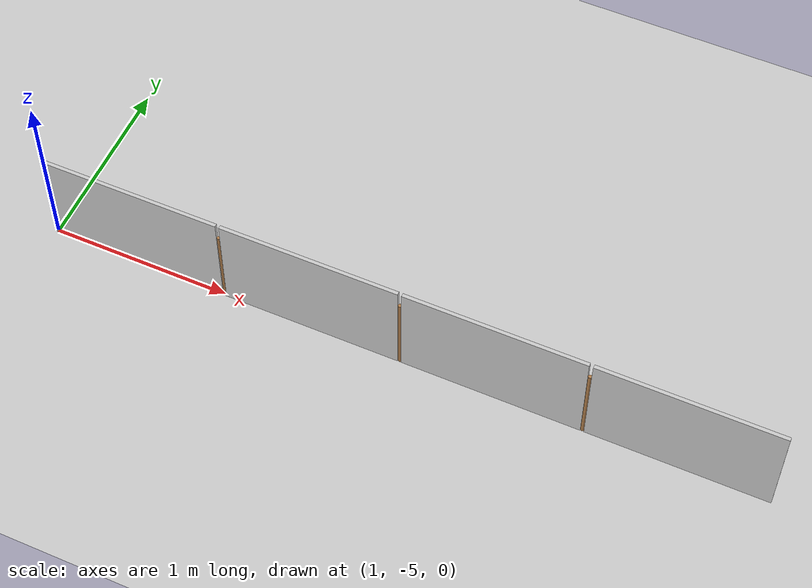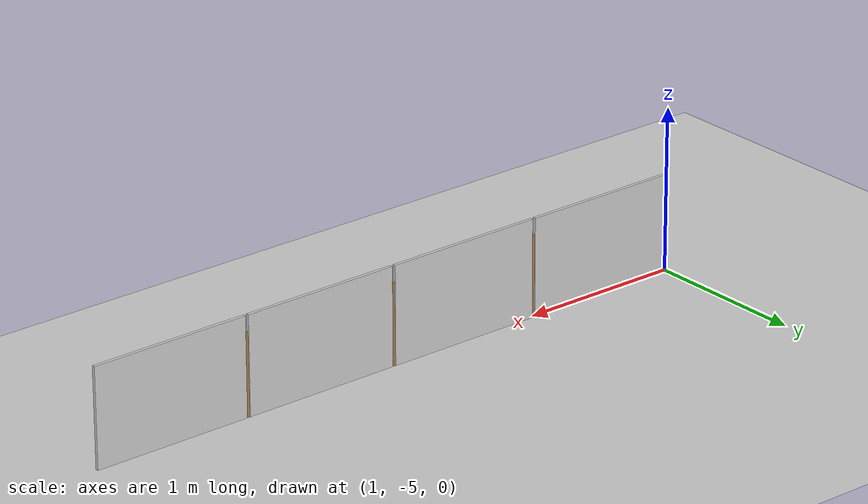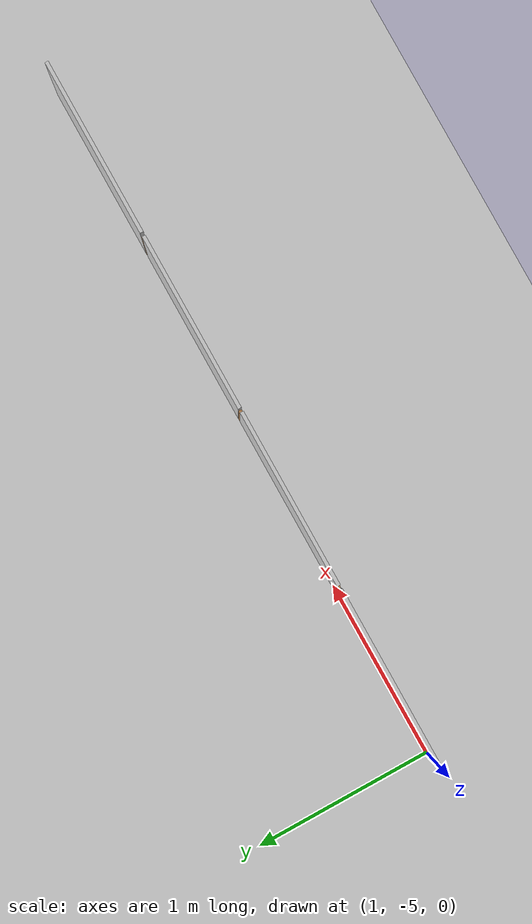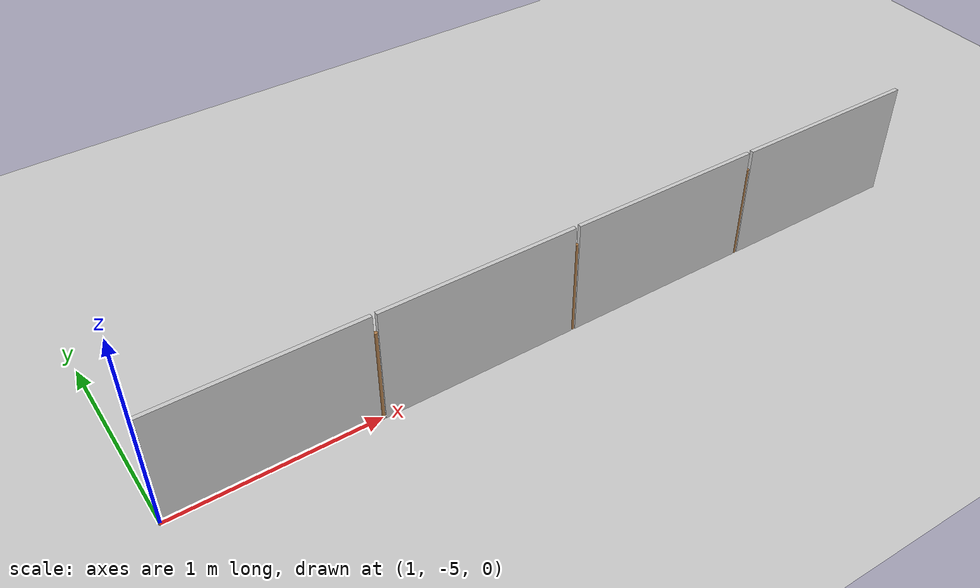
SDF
<sdf version="1.7">
 <world name="default">
  <model name="ground_plane">
   <static>true</static>
   <link name="link">
    <collision name="collision">
     <geometry><plane><normal>0 0 1</normal><size>1 1</size></plane></geometry>
    </collision>
    <visual name="visual">
     <geometry><plane><normal>0 0 1</normal><size>100 100</size></plane></geometry>
     <material>
      <ambient>0.8 0.8 0.8 1</ambient>
      <diffuse>0.8 0.8 0.8 1</diffuse>
      <specular>0.8 0.8 0.8 1</specular>
     </material>
    </visual>
    <inertial>
     <mass>1</mass>
     <inertia><ixx>1</ixx><ixy>0</ixy><ixz>0</ixz><iyy>1</iyy><iyz>0</iyz><izz>1</izz></inertia>
    </inertial>
   </link>
  </model>
  <model name="maze_1_6x5_clone_2_clone_clone_0">
   <frame name="plywood_panel_0_0_b::__model__" attached_to="plywood_panel_0_0_b::main">
    <pose relative_to="__model__">0 0 0 0 -0 1.571</pose>
   </frame>
   <static>true</static>
   <link name="plywood_panel_0_0_b::main">
    <pose relative_to="plywood_panel_0_0_b::__model__">0 0 0 0 -0 0</pose>
    <collision name="collision">
     <pose>0 -0.5 0.3 -1.571 -0 -1.571</pose>
     <geometry><box><size>0.98 0.6 0.02</size></box></geometry>
    </collision>
    <visual name="visual">
     <pose>0.01 -0.01 0 3.14159 -1.57059 3.14159</pose>
     <geometry>
      <mesh>
       <scale>1 1 1</scale>
       <uri>/home/mayank/cognipilot/cranium/src/dream_world/models/plywood_panel/meshes/plywood.dae</uri>
      </mesh>
     </geometry>
    </visual>
   </link>
   <frame name="wooden_joint_0_0_b::__model__" attached_to="wooden_joint_0_0_b::link_0">
    <pose relative_to="__model__">0 0 0 0 -0 0</pose>
   </frame>
   <link name="wooden_joint_0_0_b::link_0">
    <pose relative_to="wooden_joint_0_0_b::__model__">0 0 0.25 0 -0 0</pose>
    <inertial>
     <mass>0.00215981</mass>
     <inertia>
      <ixx>0.00018028</ixx>
      <ixy>0</ixy>
      <ixz>0</ixz>
      <iyy>0.00018028</iyy>
      <iyz>0</iyz>
      <izz>5.8e-07</izz>
     </inertia>
    </inertial>
    <visual name="visual">
     <geometry><cylinder><radius>0.01</radius><length>0.5</length></cylinder></geometry>
     <material>
      <lighting>1</lighting>
      <script><uri>file://media/materials/scripts/gazebo.material</uri><name>Gazebo/Wood</name></script>
      <shader type="pixel"><normal_map>__default__</normal_map></shader>
      <ambient>0.3 0.3 0.3 1</ambient>
      <diffuse>0.7 0.7 0.7 1</diffuse>
      <specular>0.01 0.01 0.01 1</specular>
      <emissive>0 0 0 1</emissive>
     </material>
    </visual>
    <collision name="collision">
     <geometry><cylinder><radius>0.01</radius><length>0.5</length></cylinder></geometry>
     <surface>
      <friction>
       <ode><mu>1</mu><mu2>1</mu2><fdir1>0 0 0</fdir1><slip1>0</slip1><slip2>0</slip2></ode>
       <torsional>
        <coefficient>1</coefficient>
        <patch_radius>0</patch_radius>
        <surface_radius>0</surface_radius>
        <use_patch_radius>1</use_patch_radius>
        <ode><slip>0</slip></ode>
       </torsional>
      </friction>
      <bounce><restitution_coefficient>0</restitution_coefficient><threshold>1e+06</threshold></bounce>
      <contact>
       <collide_without_contact>0</collide_without_contact>
       <collide_without_contact_bitmask>1</collide_without_contact_bitmask>
       <collide_bitmask>1</collide_bitmask>
       <ode>
        <soft_cfm>0</soft_cfm>
        <soft_erp>0.2</soft_erp>
        <kp>1e+13</kp>
        <kd>1</kd>
        <max_vel>0.01</max_vel>
        <min_depth>0</min_depth>
       </ode>
       <bullet>
        <split_impulse>1</split_impulse>
        <split_impulse_penetration_threshold>-0.01</split_impulse_penetration_threshold>
        <soft_cfm>0</soft_cfm>
        <soft_erp>0.2</soft_erp>
        <kp>1e+13</kp>
        <kd>1</kd>
       </bullet>
      </contact>
     </surface>
    </collision>
   </link>
   <static>true</static>
   <pose>1 -5 0 0 0 -4e-06</pose>
  </model>
  <model name="maze_1_6x5_clone_2_clone_clone_3">
   <frame name="plywood_panel_0_0_b::__model__" attached_to="plywood_panel_0_0_b::main">
    <pose relative_to="__model__">0 0 0 0 -0 1.571</pose>
   </frame>
   <static>true</static>
   <link name="plywood_panel_0_0_b::main">
    <pose relative_to="plywood_panel_0_0_b::__model__">0 0 0 0 -0 0</pose>
    <collision name="collision">
     <pose>0 -0.5 0.3 -1.571 -0 -1.571</pose>
     <geometry><box><size>0.98 0.6 0.02</size></box></geometry>
    </collision>
    <visual name="visual">
     <pose>0.01 -0.01 0 3.14159 -1.57059 3.14159</pose>
     <geometry>
      <mesh>
       <scale>1 1 1</scale>
       <uri>/home/mayank/cognipilot/cranium/src/dream_world/models/plywood_panel/meshes/plywood.dae</uri>
      </mesh>
     </geometry>
    </visual>
   </link>
   <frame name="wooden_joint_0_0_b::__model__" attached_to="wooden_joint_0_0_b::link_0">
    <pose relative_to="__model__">0 0 0 0 -0 0</pose>
   </frame>
   <link name="wooden_joint_0_0_b::link_0">
    <pose relative_to="wooden_joint_0_0_b::__model__">0 0 0.25 0 -0 0</pose>
    <inertial>
     <mass>0.00215981</mass>
     <inertia>
      <ixx>0.00018028</ixx>
      <ixy>0</ixy>
      <ixz>0</ixz>
      <iyy>0.00018028</iyy>
      <iyz>0</iyz>
      <izz>5.8e-07</izz>
     </inertia>
    </inertial>
    <visual name="visual">
     <geometry><cylinder><radius>0.01</radius><length>0.5</length></cylinder></geometry>
     <material>
      <lighting>1</lighting>
      <script><uri>file://media/materials/scripts/gazebo.material</uri><name>Gazebo/Wood</name></script>
      <shader type="pixel"><normal_map>__default__</normal_map></shader>
      <ambient>0.3 0.3 0.3 1</ambient>
      <diffuse>0.7 0.7 0.7 1</diffuse>
      <specular>0.01 0.01 0.01 1</specular>
      <emissive>0 0 0 1</emissive>
     </material>
    </visual>
    <collision name="collision">
     <geometry><cylinder><radius>0.01</radius><length>0.5</length></cylinder></geometry>
     <surface>
      <friction>
       <ode><mu>1</mu><mu2>1</mu2><fdir1>0 0 0</fdir1><slip1>0</slip1><slip2>0</slip2></ode>
       <torsional>
        <coefficient>1</coefficient>
        <patch_radius>0</patch_radius>
        <surface_radius>0</surface_radius>
        <use_patch_radius>1</use_patch_radius>
        <ode><slip>0</slip></ode>
       </torsional>
      </friction>
      <bounce><restitution_coefficient>0</restitution_coefficient><threshold>1e+06</threshold></bounce>
      <contact>
       <collide_without_contact>0</collide_without_contact>
       <collide_without_contact_bitmask>1</collide_without_contact_bitmask>
       <collide_bitmask>1</collide_bitmask>
       <ode>
        <soft_cfm>0</soft_cfm>
        <soft_erp>0.2</soft_erp>
        <kp>1e+13</kp>
        <kd>1</kd>
        <max_vel>0.01</max_vel>
        <min_depth>0</min_depth>
       </ode>
       <bullet>
        <split_impulse>1</split_impulse>
        <split_impulse_penetration_threshold>-0.01</split_impulse_penetration_threshold>
        <soft_cfm>0</soft_cfm>
        <soft_erp>0.2</soft_erp>
        <kp>1e+13</kp>
        <kd>1</kd>
       </bullet>
      </contact>
     </surface>
    </collision>
   </link>
   <static>true</static>
   <pose>2 -5 0 0 0 -4e-06</pose>
  </model>
  <model name="maze_1_6x5_clone_2_clone_clone_clone_3">
   <frame name="plywood_panel_0_0_b::__model__" attached_to="plywood_panel_0_0_b::main">
    <pose relative_to="__model__">0 0 0 0 -0 1.571</pose>
   </frame>
   <static>true</static>
   <link name="plywood_panel_0_0_b::main">
    <pose relative_to="plywood_panel_0_0_b::__model__">0 0 0 0 -0 0</pose>
    <collision name="collision">
     <pose>0 -0.5 0.3 -1.571 -0 -1.571</pose>
     <geometry><box><size>0.98 0.6 0.02</size></box></geometry>
    </collision>
    <visual name="visual">
     <pose>0.01 -0.01 0 3.14159 -1.57059 3.14159</pose>
     <geometry>
      <mesh>
       <scale>1 1 1</scale>
       <uri>/home/mayank/cognipilot/cranium/src/dream_world/models/plywood_panel/meshes/plywood.dae</uri>
      </mesh>
     </geometry>
    </visual>
   </link>
   <frame name="wooden_joint_0_0_b::__model__" attached_to="wooden_joint_0_0_b::link_0">
    <pose relative_to="__model__">0 0 0 0 -0 0</pose>
   </frame>
   <link name="wooden_joint_0_0_b::link_0">
    <pose relative_to="wooden_joint_0_0_b::__model__">0 0 0.25 0 -0 0</pose>
    <inertial>
     <mass>0.00215981</mass>
     <inertia>
      <ixx>0.00018028</ixx>
      <ixy>0</ixy>
      <ixz>0</ixz>
      <iyy>0.00018028</iyy>
      <iyz>0</iyz>
      <izz>5.8e-07</izz>
     </inertia>
    </inertial>
    <visual name="visual">
     <geometry><cylinder><radius>0.01</radius><length>0.5</length></cylinder></geometry>
     <material>
      <lighting>1</lighting>
      <script><uri>file://media/materials/scripts/gazebo.material</uri><name>Gazebo/Wood</name></script>
      <shader type="pixel"><normal_map>__default__</normal_map></shader>
      <ambient>0.3 0.3 0.3 1</ambient>
      <diffuse>0.7 0.7 0.7 1</diffuse>
      <specular>0.01 0.01 0.01 1</specular>
      <emissive>0 0 0 1</emissive>
     </material>
    </visual>
    <collision name="collision">
     <geometry><cylinder><radius>0.01</radius><length>0.5</length></cylinder></geometry>
     <surface>
      <friction>
       <ode><mu>1</mu><mu2>1</mu2><fdir1>0 0 0</fdir1><slip1>0</slip1><slip2>0</slip2></ode>
       <torsional>
        <coefficient>1</coefficient>
        <patch_radius>0</patch_radius>
        <surface_radius>0</surface_radius>
        <use_patch_radius>1</use_patch_radius>
        <ode><slip>0</slip></ode>
       </torsional>
      </friction>
      <bounce><restitution_coefficient>0</restitution_coefficient><threshold>1e+06</threshold></bounce>
      <contact>
       <collide_without_contact>0</collide_without_contact>
       <collide_without_contact_bitmask>1</collide_without_contact_bitmask>
       <collide_bitmask>1</collide_bitmask>
       <ode>
        <soft_cfm>0</soft_cfm>
        <soft_erp>0.2</soft_erp>
        <kp>1e+13</kp>
        <kd>1</kd>
        <max_vel>0.01</max_vel>
        <min_depth>0</min_depth>
       </ode>
       <bullet>
        <split_impulse>1</split_impulse>
        <split_impulse_penetration_threshold>-0.01</split_impulse_penetration_threshold>
        <soft_cfm>0</soft_cfm>
        <soft_erp>0.2</soft_erp>
        <kp>1e+13</kp>
        <kd>1</kd>
       </bullet>
      </contact>
     </surface>
    </collision>
   </link>
   <static>true</static>
   <pose>3 -5 0 0 0 -4e-06</pose>
  </model>
  <model name="maze_1_6x5_clone_2_clone_clone_clone_4">
   <frame name="plywood_panel_0_0_b::__model__" attached_to="plywood_panel_0_0_b::main">
    <pose relative_to="__model__">0 0 0 0 -0 1.571</pose>
   </frame>
   <static>true</static>
   <link name="plywood_panel_0_0_b::main">
    <pose relative_to="plywood_panel_0_0_b::__model__">0 0 0 0 -0 0</pose>
    <collision name="collision">
     <pose>0 -0.5 0.3 -1.571 -0 -1.571</pose>
     <geometry><box><size>0.98 0.6 0.02</size></box></geometry>
    </collision>
    <visual name="visual">
     <pose>0.01 -0.01 0 3.14159 -1.57059 3.14159</pose>
     <geometry>
      <mesh>
       <scale>1 1 1</scale>
       <uri>/home/mayank/cognipilot/cranium/src/dream_world/models/plywood_panel/meshes/plywood.dae</uri>
      </mesh>
     </geometry>
    </visual>
   </link>
   <frame name="wooden_joint_0_0_b::__model__" attached_to="wooden_joint_0_0_b::link_0">
    <pose relative_to="__model__">0 0 0 0 -0 0</pose>
   </frame>
   <link name="wooden_joint_0_0_b::link_0">
    <pose relative_to="wooden_joint_0_0_b::__model__">0 0 0.25 0 -0 0</pose>
    <inertial>
     <mass>0.00215981</mass>
     <inertia>
      <ixx>0.00018028</ixx>
      <ixy>0</ixy>
      <ixz>0</ixz>
      <iyy>0.00018028</iyy>
      <iyz>0</iyz>
      <izz>5.8e-07</izz>
     </inertia>
    </inertial>
    <visual name="visual">
     <geometry><cylinder><radius>0.01</radius><length>0.5</length></cylinder></geometry>
     <material>
      <lighting>1</lighting>
      <script><uri>file://media/materials/scripts/gazebo.material</uri><name>Gazebo/Wood</name></script>
      <shader type="pixel"><normal_map>__default__</normal_map></shader>
      <ambient>0.3 0.3 0.3 1</ambient>
      <diffuse>0.7 0.7 0.7 1</diffuse>
      <specular>0.01 0.01 0.01 1</specular>
      <emissive>0 0 0 1</emissive>
     </material>
    </visual>
    <collision name="collision">
     <geometry><cylinder><radius>0.01</radius><length>0.5</length></cylinder></geometry>
     <surface>
      <friction>
       <ode><mu>1</mu><mu2>1</mu2><fdir1>0 0 0</fdir1><slip1>0</slip1><slip2>0</slip2></ode>
       <torsional>
        <coefficient>1</coefficient>
        <patch_radius>0</patch_radius>
        <surface_radius>0</surface_radius>
        <use_patch_radius>1</use_patch_radius>
        <ode><slip>0</slip></ode>
       </torsional>
      </friction>
      <bounce><restitution_coefficient>0</restitution_coefficient><threshold>1e+06</threshold></bounce>
      <contact>
       <collide_without_contact>0</collide_without_contact>
       <collide_without_contact_bitmask>1</collide_without_contact_bitmask>
       <collide_bitmask>1</collide_bitmask>
       <ode>
        <soft_cfm>0</soft_cfm>
        <soft_erp>0.2</soft_erp>
        <kp>1e+13</kp>
        <kd>1</kd>
        <max_vel>0.01</max_vel>
        <min_depth>0</min_depth>
       </ode>
       <bullet>
        <split_impulse>1</split_impulse>
        <split_impulse_penetration_threshold>-0.01</split_impulse_penetration_threshold>
        <soft_cfm>0</soft_cfm>
        <soft_erp>0.2</soft_erp>
        <kp>1e+13</kp>
        <kd>1</kd>
       </bullet>
      </contact>
     </surface>
    </collision>
   </link>
   <static>true</static>
   <pose>4 -5 0 0 0 -4e-06</pose>
  </model>
 </world>
</sdf>
